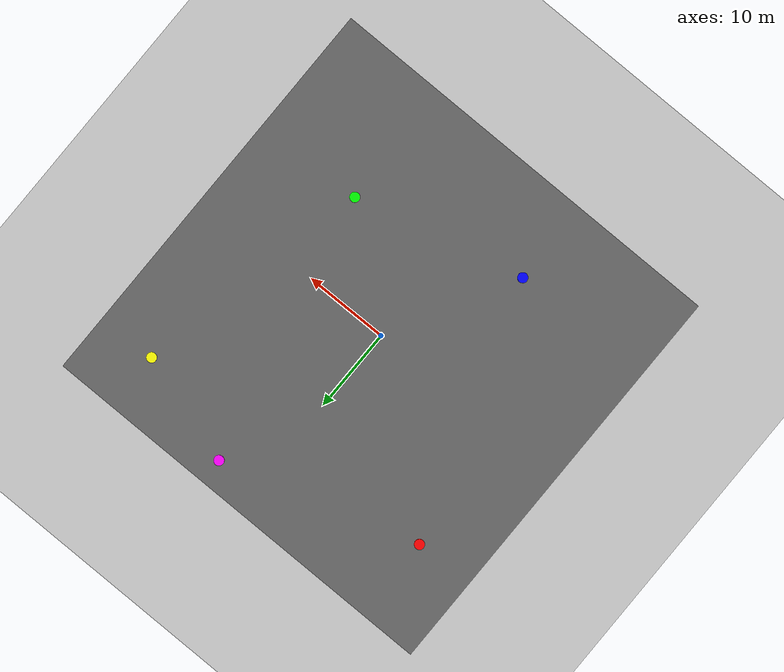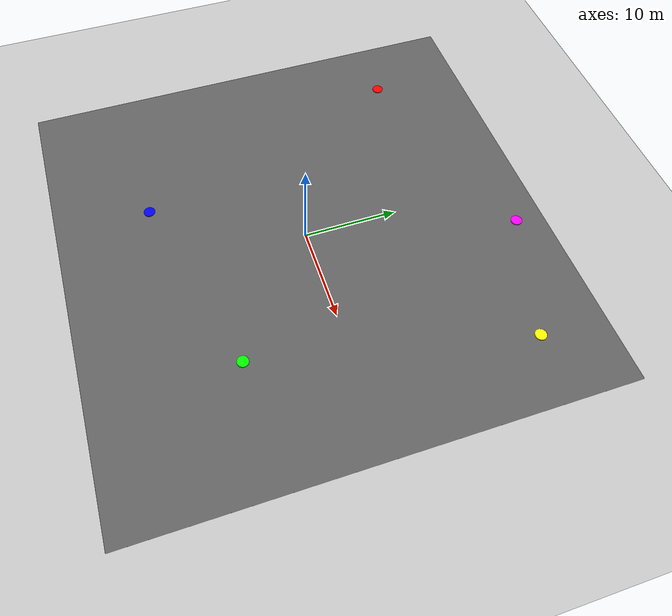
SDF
<?xml version="1.0" ?>
<sdf version="1.6">
  <world name="swarm_arena">

    <include><uri>model://sun</uri></include>
    <include><uri>model://ground_plane</uri></include>

    <!-- Арена 50x50: просто большой плоский маркер -->
    <model name="arena_marker">
      <static>true</static>
      <pose>0 0 0.001 0 0 0</pose>
      <link name="link">
        <visual name="v">
          <geometry><box><size>50 50 0.002</size></box></geometry>
          <material><ambient>0.3 0.3 0.3 1</ambient><diffuse>0.4 0.4 0.4 1</diffuse></material>
        </visual>
      </link>
    </model>

    <!-- 5 цветных целей-маркеров -->
    <model name="target_red">
      <static>true</static><pose>-18 15 0.05 0 0 0</pose>
      <link name="link">
        <visual name="v">
          <geometry><cylinder><radius>0.6</radius><length>0.1</length></cylinder></geometry>
          <material><ambient>1 0 0 1</ambient><diffuse>1 0 0 1</diffuse></material>
        </visual>
      </link>
    </model>

    <model name="target_green">
      <static>true</static><pose>12 -10 0.05 0 0 0</pose>
      <link name="link">
        <visual name="v">
          <geometry><cylinder><radius>0.6</radius><length>0.1</length></cylinder></geometry>
          <material><ambient>0 1 0 1</ambient><diffuse>0 1 0 1</diffuse></material>
        </visual>
      </link>
    </model>

    <model name="target_blue">
      <static>true</static><pose>-8 -15 0.05 0 0 0</pose>
      <link name="link">
        <visual name="v">
          <geometry><cylinder><radius>0.6</radius><length>0.1</length></cylinder></geometry>
          <material><ambient>0 0 1 1</ambient><diffuse>0 0 1 1</diffuse></material>
        </visual>
      </link>
    </model>

    <model name="target_yellow">
      <static>true</static><pose>18 18 0.05 0 0 0</pose>
      <link name="link">
        <visual name="v">
          <geometry><cylinder><radius>0.6</radius><length>0.1</length></cylinder></geometry>
          <material><ambient>1 1 0 1</ambient><diffuse>1 1 0 1</diffuse></material>
        </visual>
      </link>
    </model>

    <model name="target_magenta">
      <static>true</static><pose>5 22 0.05 0 0 0</pose>
      <link name="link">
        <visual name="v">
          <geometry><cylinder><radius>0.6</radius><length>0.1</length></cylinder></geometry>
          <material><ambient>1 0 1 1</ambient><diffuse>1 0 1 1</diffuse></material>
        </visual>
      </link>
    </model>

  </world>
</sdf>
